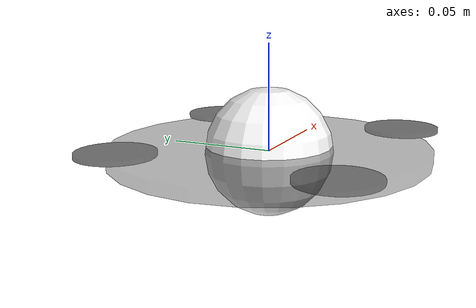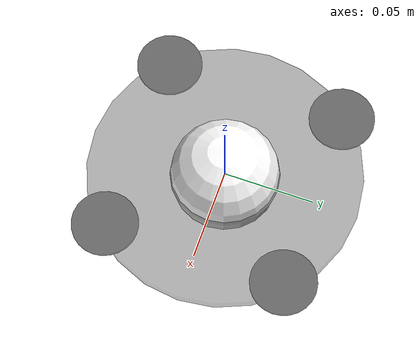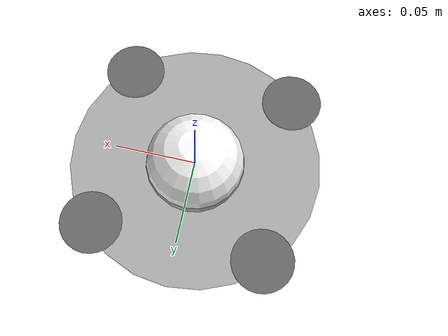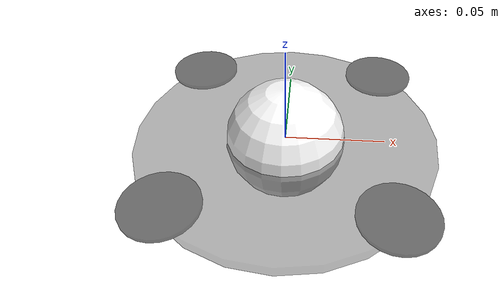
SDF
<?xml version="1.0"?>
<sdf version="1.9">
  <model name="drone">
    <link name="base_link">
      <gravity>false</gravity>
      <inertial>
        <mass>0.03</mass>
        <inertia>
          <ixx>0.00002</ixx><iyy>0.00002</iyy><izz>0.00004</izz>
          <ixy>0</ixy><ixz>0</ixz><iyz>0</iyz>
        </inertia>
      </inertial>

      <!-- Central body: doubles as the LED diffuser housing -->
      <visual name="body_visual">
        <geometry>
          <sphere><radius>0.03</radius></sphere>
        </geometry>
        <material>
          <ambient>1 1 1 1</ambient>
          <diffuse>1 1 1 1</diffuse>
          <emissive>0.8 0.8 0.8 1</emissive>
        </material>
      </visual>
      <collision name="body_collision">
        <geometry>
          <cylinder><radius>0.075</radius><length>0.03</length></cylinder>
        </geometry>
      </collision>

      <!-- Protective cage ring (thin torus-like ring approximated
           with 8 small connecting struts around the perimeter) -->
      <visual name="cage_ring">
        <pose>0 0 0 0 0 0</pose>
        <geometry>
          <cylinder><radius>0.075</radius><length>0.006</length></cylinder>
        </geometry>
        <material>
          <ambient>0.1 0.1 0.1 0.35</ambient>
          <diffuse>0.1 0.1 0.1 0.35</diffuse>
        </material>
        <transparency>0.6</transparency>
      </visual>

      <!-- 4 propellers nested inside the cage, X configuration -->
      <visual name="prop_fr"><pose>0.05 -0.05 0.005 0 0 0</pose>
        <geometry><cylinder><radius>0.018</radius><length>0.002</length></cylinder></geometry>
        <material><ambient>0.05 0.05 0.05 0.6</ambient></material></visual>
      <visual name="prop_fl"><pose>0.05 0.05 0.005 0 0 0</pose>
        <geometry><cylinder><radius>0.018</radius><length>0.002</length></cylinder></geometry>
        <material><ambient>0.05 0.05 0.05 0.6</ambient></material></visual>
      <visual name="prop_br"><pose>-0.05 -0.05 0.005 0 0 0</pose>
        <geometry><cylinder><radius>0.018</radius><length>0.002</length></cylinder></geometry>
        <material><ambient>0.05 0.05 0.05 0.6</ambient></material></visual>
      <visual name="prop_bl"><pose>-0.05 0.05 0.005 0 0 0</pose>
        <geometry><cylinder><radius>0.018</radius><length>0.002</length></cylinder></geometry>
        <material><ambient>0.05 0.05 0.05 0.6</ambient></material></visual>

      <!-- LED light source, colour updated at runtime to match
           point_colors / candidate_colors from formation_msgs.
           Positioned at body centre so it lights the diffuser sphere. -->
      <light name="led_light" type="point">
        <pose>0 0 0 0 0 0</pose>
        <diffuse>1 1 1 1</diffuse>
        <specular>0.5 0.5 0.5 1</specular>
        <attenuation>
          <range>2.0</range>
          <constant>0.1</constant>
          <linear>0.3</linear>
          <quadratic>0.2</quadratic>
        </attenuation>
        <cast_shadows>false</cast_shadows>
      </light>
    </link>
  </model>
</sdf>
